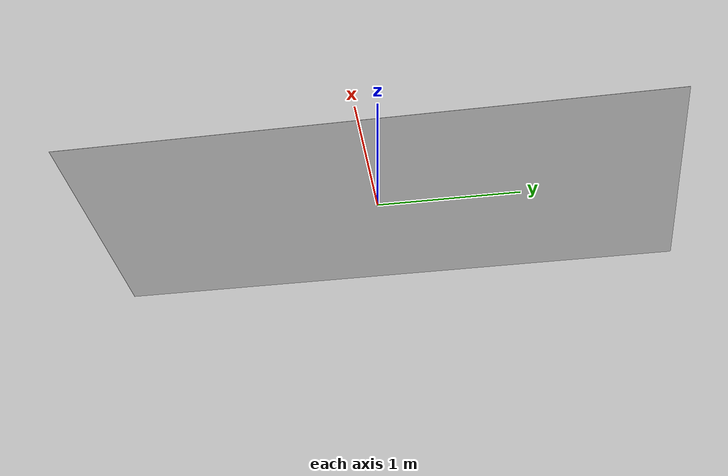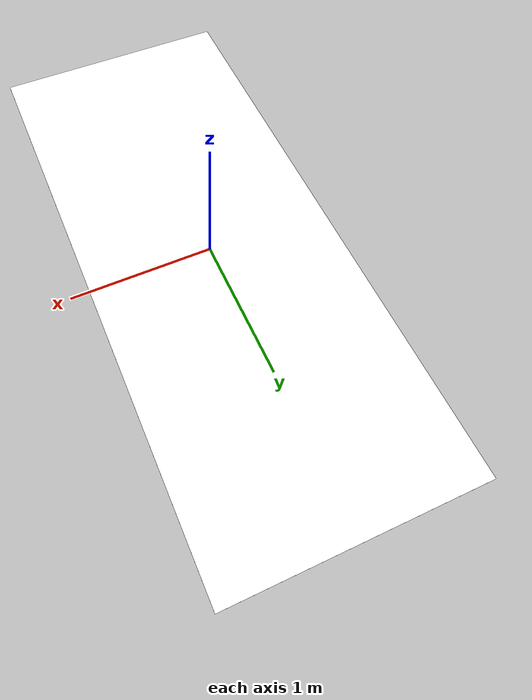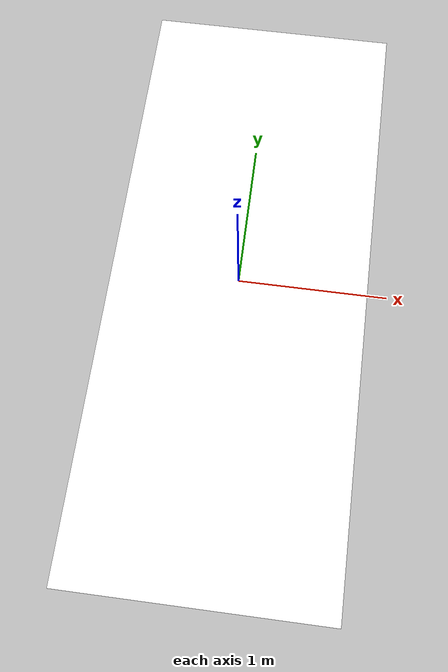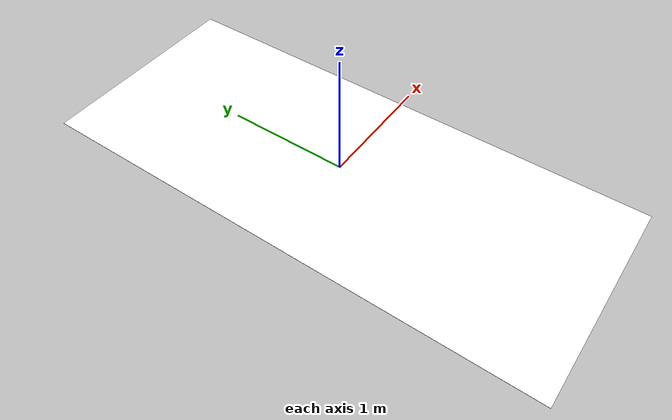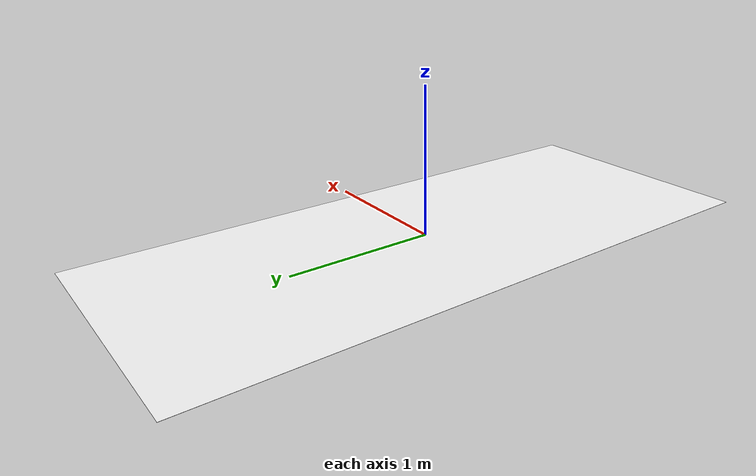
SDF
<?xml version='1.0'?>
<sdf version='1.4'>
    <model name='conde_world'>
      <static>1</static>
      <link name='link_ground'>
        <collision name='collision'>
          <geometry>
            <plane>
              <normal>0 0 1</normal>
              <size>1.74 4.17</size>
            </plane>
          </geometry>
          <surface>
            <friction>
              <ode>
                <mu>100</mu>
                <mu2>50</mu2>
              </ode>
            </friction>
            <bounce/>
            <contact>
              <ode/>
            </contact>
          </surface>
          <max_contacts>10</max_contacts>
        </collision>
        <visual name='visual_ground'>
          <cast_shadows>0</cast_shadows>
	  <pose>0 0 .005 0 0 0</pose>
          <geometry>
            <plane>
              <normal>0 0 1</normal>
              <size>1.74 4.17</size>
            </plane>
          </geometry>
          <material>
            <ambient>1 1 1 1</ambient>
            <diffuse>1 1 1 1</diffuse>
            <specular>0.03 0.03 0.03 1</specular>
            <emissive>0.9 0.9 0.9 1</emissive>
            <pbr>
              <metal>
                <albedo_map>model://conde_world/materials/textures/floor.png</albedo_map>
                <emissive_map>model://conde_world/materials/textures/floor.png</emissive_map>
                <metalness>0.0</metalness>
                <roughness>1.0</roughness>
              </metal>
            </pbr>
          </material>
        </visual>
        <velocity_decay>
          <linear>0</linear>
          <angular>0</angular>
        </velocity_decay>
        <self_collide>0</self_collide>
        <kinematic>0</kinematic>
        <gravity>1</gravity>
      </link>
      <pose>0 0 0 0 -0 0</pose>
    </model>
</sdf>
